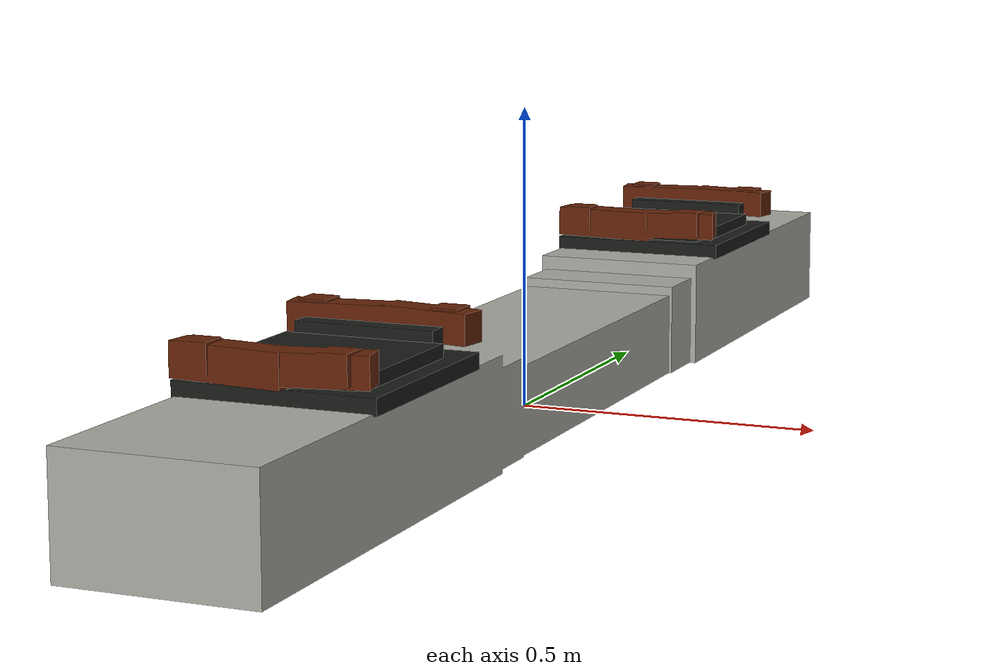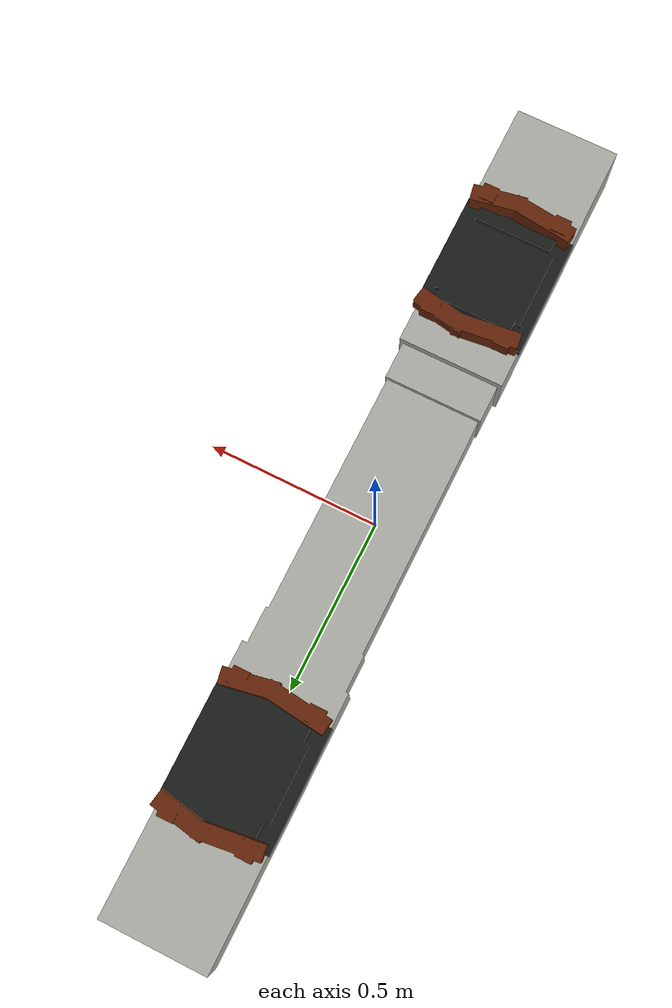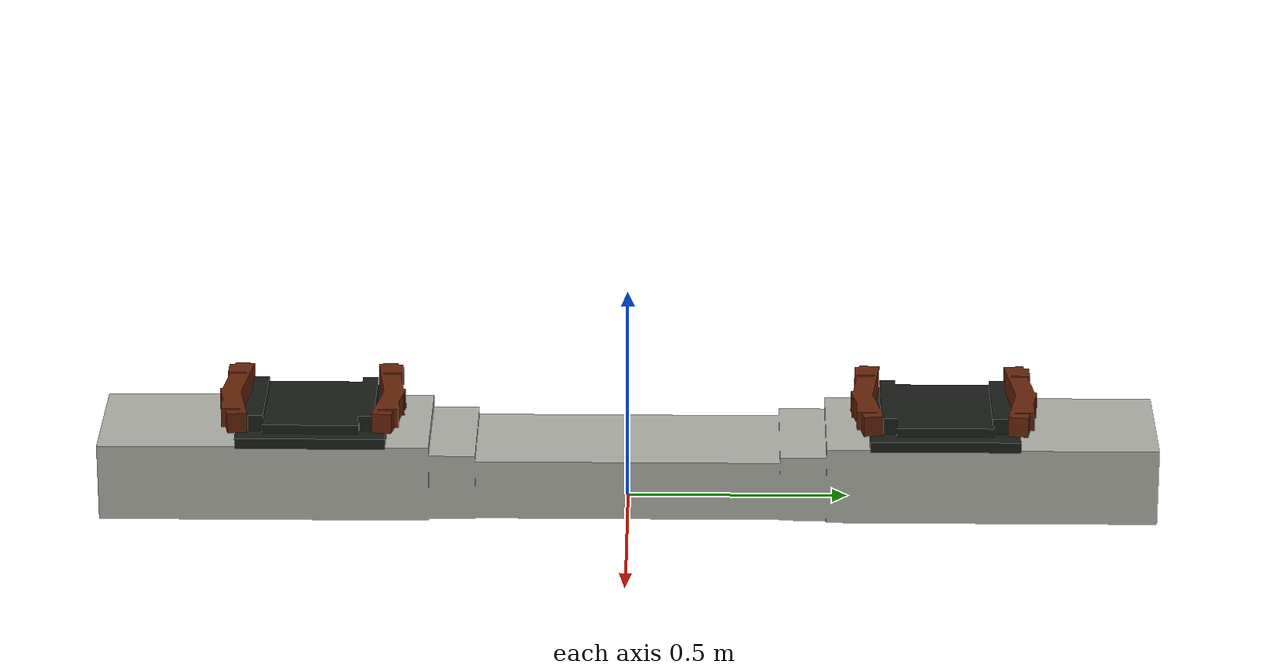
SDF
<?xml version="1.0"?>
<sdf version="1.9">
  <model name="pc_sleeper">
    <static>true</static>
    <plugin filename="gz-sim-label-system" name="gz::sim::systems::Label"><label>10</label></plugin>
    <link name="sleeper">
      <collision name="sleeper_collision"><pose>0 0 0.09 0 0 0</pose><geometry><box><size>0.30 2.40 0.18</size></box></geometry></collision>
      <visual name="concrete"><geometry><mesh><uri>model://pc_sleeper/meshes/pc_sleeper_concrete.obj</uri></mesh></geometry><material><ambient>0.47 0.47 0.45 1</ambient><diffuse>0.68 0.68 0.65 1</diffuse><pbr><metal><roughness>0.92</roughness><metalness>0</metalness></metal></pbr></material></visual>
      <visual name="hardware"><geometry><mesh><uri>model://pc_sleeper/meshes/pc_sleeper_hardware.obj</uri></mesh></geometry><material><ambient>0.035 0.038 0.036 1</ambient><diffuse>0.10 0.11 0.10 1</diffuse><specular>0.20 0.20 0.20 1</specular><pbr><metal><roughness>0.66</roughness><metalness>0.28</metalness></metal></pbr></material></visual>
      <visual name="clips"><geometry><mesh><uri>model://pc_sleeper/meshes/pc_sleeper_clips.obj</uri></mesh></geometry><material><ambient>0.16 0.055 0.015 1</ambient><diffuse>0.40 0.14 0.035 1</diffuse><specular>0.24 0.18 0.12 1</specular><pbr><metal><roughness>0.52</roughness><metalness>0.62</metalness></metal></pbr></material></visual>
    </link>
  </model>
</sdf>
